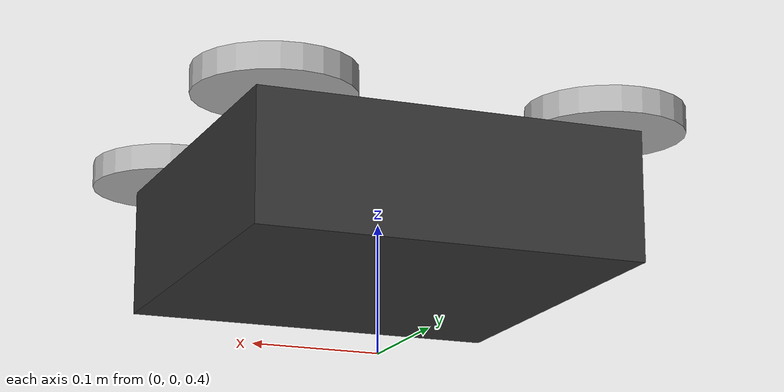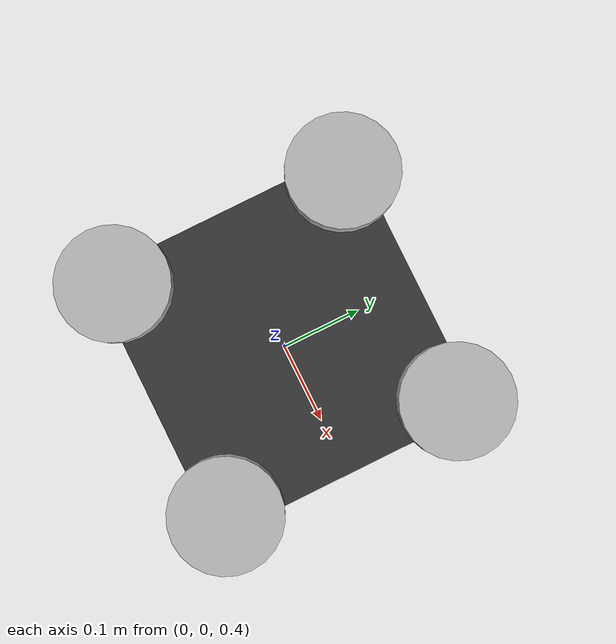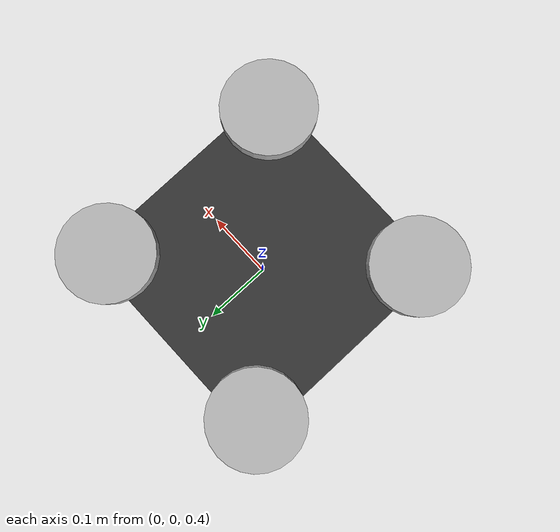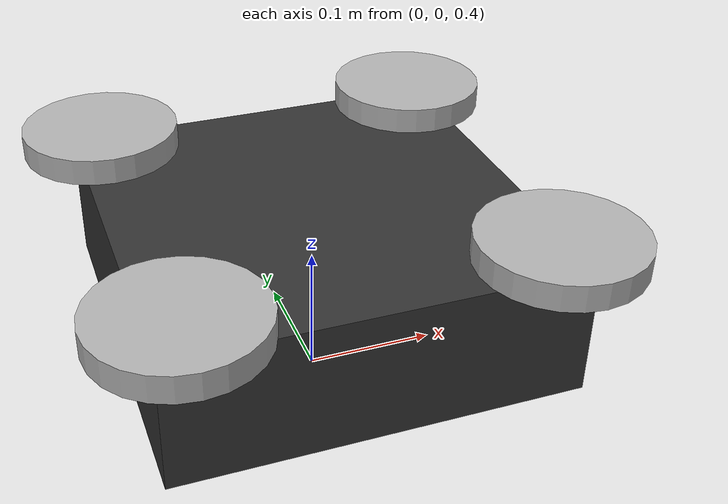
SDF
<?xml version="1.0"?>
<!-- Gazebo-side model for the pathfinder cheater drone.
     Carries the VelocityControl plugin (cmd_vel -> link velocity).
     ROS-side TF/visualization is driven by urdf/drone.urdf. -->
<sdf version="1.9">
  <model name="pathfinder_drone">
    <pose>0 0 0.5 0 0 0</pose>

    <link name="base_link">
      <!-- Holonomic cheater: gravity off so a zero Twist holds altitude. -->
      <gravity>false</gravity>
      <inertial>
        <mass>1.5</mass>
        <inertia>
          <ixx>0.0125</ixx>
          <iyy>0.0125</iyy>
          <izz>0.0225</izz>
          <ixy>0</ixy>
          <ixz>0</ixz>
          <iyz>0</iyz>
        </inertia>
      </inertial>
      <visual name="base_visual">
        <geometry>
          <box>
            <size>0.30 0.30 0.10</size>
          </box>
        </geometry>
        <material>
          <ambient>0.2 0.2 0.2 1</ambient>
          <diffuse>0.2 0.2 0.2 1</diffuse>
          <specular>0.2 0.2 0.2 1</specular>
        </material>
      </visual>
      <collision name="base_collision">
        <geometry>
          <box>
            <size>0.30 0.30 0.10</size>
          </box>
        </geometry>
      </collision>

      <visual name="rotor_fl_visual">
        <pose>0.13 0.13 0.06 0 0 0</pose>
        <geometry>
          <cylinder>
            <radius>0.06</radius>
            <length>0.02</length>
          </cylinder>
        </geometry>
        <material>
          <ambient>0.7 0.7 0.7 1</ambient>
          <diffuse>0.7 0.7 0.7 1</diffuse>
        </material>
      </visual>
      <visual name="rotor_fr_visual">
        <pose>0.13 -0.13 0.06 0 0 0</pose>
        <geometry>
          <cylinder>
            <radius>0.06</radius>
            <length>0.02</length>
          </cylinder>
        </geometry>
        <material>
          <ambient>0.7 0.7 0.7 1</ambient>
          <diffuse>0.7 0.7 0.7 1</diffuse>
        </material>
      </visual>
      <visual name="rotor_rl_visual">
        <pose>-0.13 0.13 0.06 0 0 0</pose>
        <geometry>
          <cylinder>
            <radius>0.06</radius>
            <length>0.02</length>
          </cylinder>
        </geometry>
        <material>
          <ambient>0.7 0.7 0.7 1</ambient>
          <diffuse>0.7 0.7 0.7 1</diffuse>
        </material>
      </visual>
      <visual name="rotor_rr_visual">
        <pose>-0.13 -0.13 0.06 0 0 0</pose>
        <geometry>
          <cylinder>
            <radius>0.06</radius>
            <length>0.02</length>
          </cylinder>
        </geometry>
        <material>
          <ambient>0.7 0.7 0.7 1</ambient>
          <diffuse>0.7 0.7 0.7 1</diffuse>
        </material>
      </visual>
    </link>

    <!-- cmd_vel (gz.msgs.Twist) -> base_link velocity. Topic remapped to /cmd_vel. -->
    <plugin filename="gz-sim-velocity-control-system"
            name="gz::sim::systems::VelocityControl">
      <topic>cmd_vel</topic>
    </plugin>

    <!-- Publish pose updates on /model/pathfinder_drone/pose for the ROS bridge. -->
    <plugin filename="gz-sim-pose-publisher-system"
            name="gz::sim::systems::PosePublisher">
      <publish_link_pose>false</publish_link_pose>
      <publish_visual_pose>false</publish_visual_pose>
      <publish_collision_pose>false</publish_collision_pose>
      <publish_nested_model_pose>false</publish_nested_model_pose>
      <publish_model_pose>true</publish_model_pose>
      <update_frequency>50</update_frequency>
    </plugin>
  </model>
</sdf>
